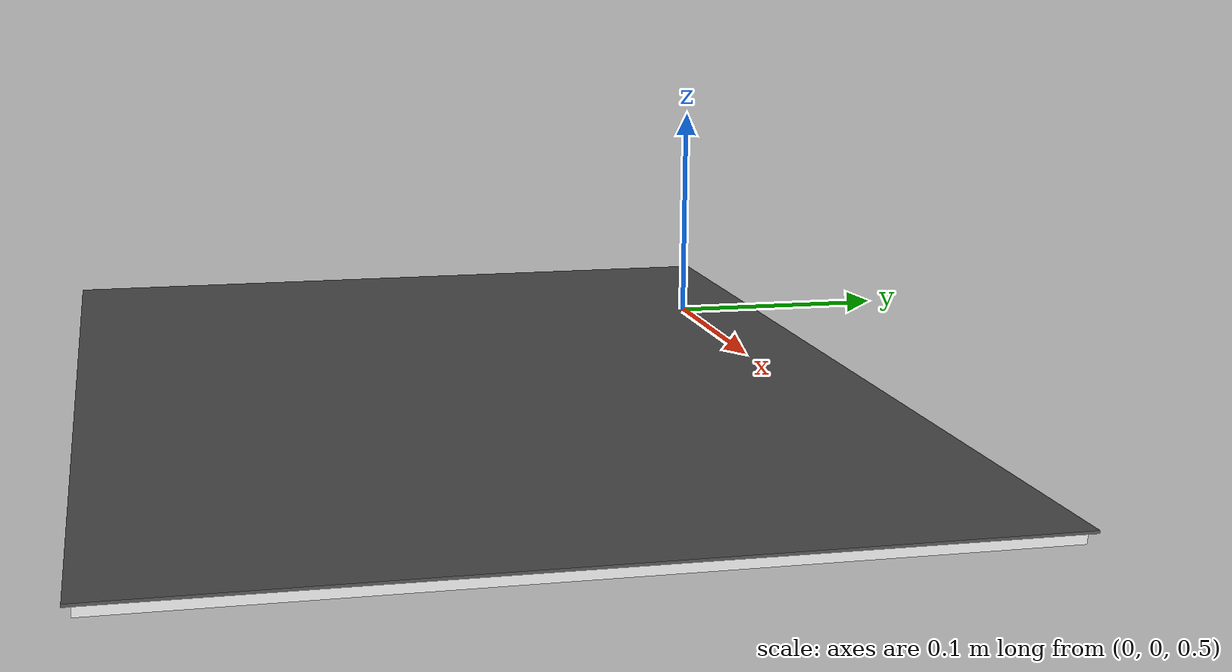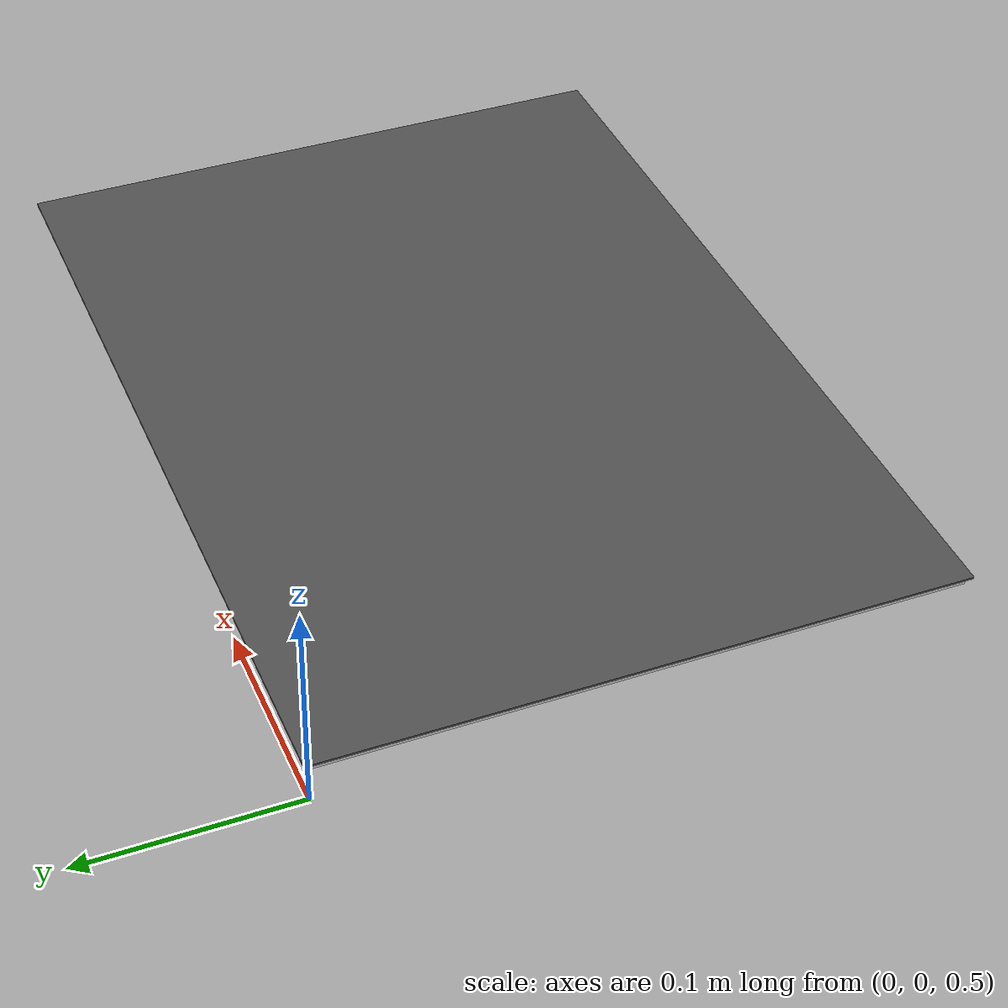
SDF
<?xml version="1.0" ?>
<sdf version="1.6">
  <model name="writing_paper">
    <static>true</static>
    <link name="paper_link">
      <!-- Model origin is the paper's top-left corner.  +X is right and +Y
           is toward the top edge; the sheet therefore occupies
           x=[0,0.42], y=[-0.297,0]. -->
      <!-- The table top is z=0.517.  With 4-mm stock the lower face rests
           on that surface and the visible top/ink plane is z=0.521. -->
      <pose>0 0 0.519 0 0 0</pose>
      <collision name="collision">
        <pose>0.21 -0.1485 0 0 0 0</pose>
        <geometry><box><size>0.42 0.297 0.004</size></box></geometry>
      </collision>
      <visual name="paper_visual">
        <!-- Link centre z=0.515 and thickness 0.004 put the top face at
             z=0.517; the ink anchor below is placed exactly on that face. -->
        <pose>0.21 -0.1485 0 0 0 0</pose>
        <geometry><box><size>0.42 0.297 0.004</size></box></geometry>
        <material>
          <ambient>0.86 0.86 0.86 1</ambient>
          <diffuse>0.98 0.98 0.98 1</diffuse>
          <specular>0.15 0.15 0.15 1</specular>
        </material>
      </visual>
      <!-- Invisible top-left anchor.  The visual plugin is attached here so
           its local coordinates match the planner's paper_frame exactly. -->
      <visual name="ink_anchor_visual">
        <!-- Anchor is exactly at the visible top-paper reference plane. -->
        <pose>0 0 0.002 0 0 0</pose>
        <geometry><box><size>0.001 0.001 0.001</size></box></geometry>
        <material>
          <ambient>0 0 0 0</ambient>
          <diffuse>0 0 0 0</diffuse>
          <transparency>1.0</transparency>
        </material>
        <plugin name="ink_visual_plugin" filename="libink_visual_plugin.so">
          <paper_width>0.420</paper_width>
          <paper_height>0.297</paper_height>
          <write_z>0.0015</write_z>
          <contact_threshold>0.003</contact_threshold>
          <z_offset>0.0005</z_offset>
          <min_point_distance>0.001</min_point_distance>
          <pen_name_hint>pen_tip_visual</pen_name_hint>
          <material>Gazebo/Black</material>
        </plugin>
      </visual>
    </link>
    <!-- A very thin dark edge makes the sheet visible in the wide Gazebo shot. -->
    <link name="paper_border">
      <!-- This link uses model coordinates, not paper_link coordinates. -->
      <pose>0.21 -0.1485 0.5215 0 0 0</pose>
      <visual name="border_visual">
        <geometry><box><size>0.425 0.302 0.001</size></box></geometry>
        <material><ambient>0.20 0.20 0.20 1</ambient><diffuse>0.35 0.35 0.35 1</diffuse></material>
      </visual>
    </link>
  </model>
</sdf>
